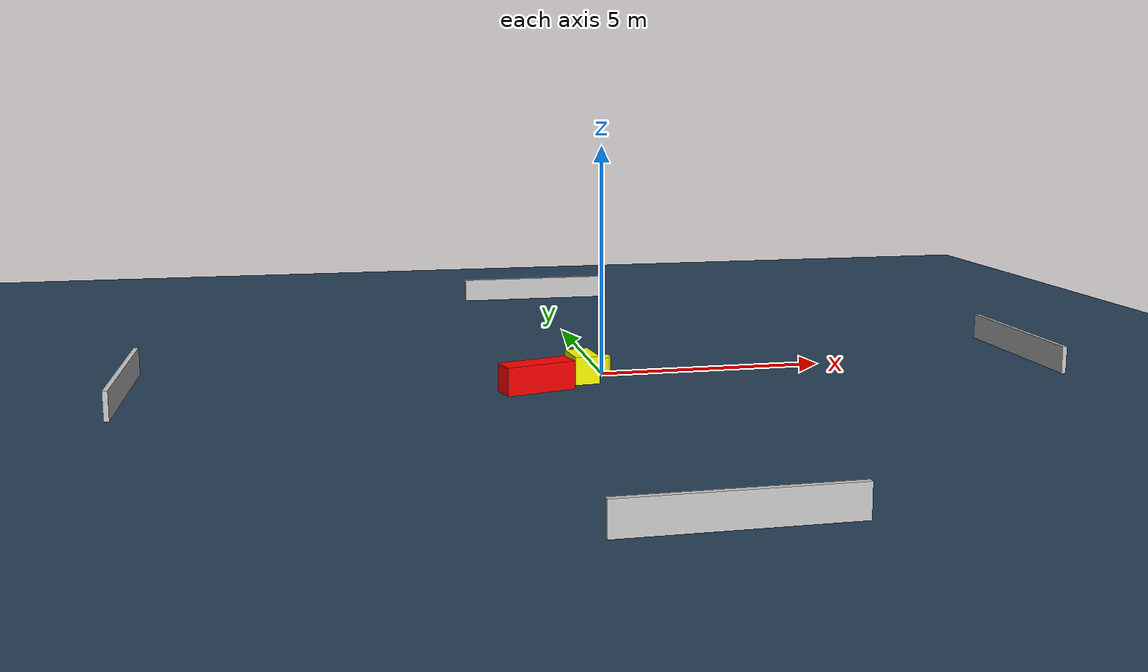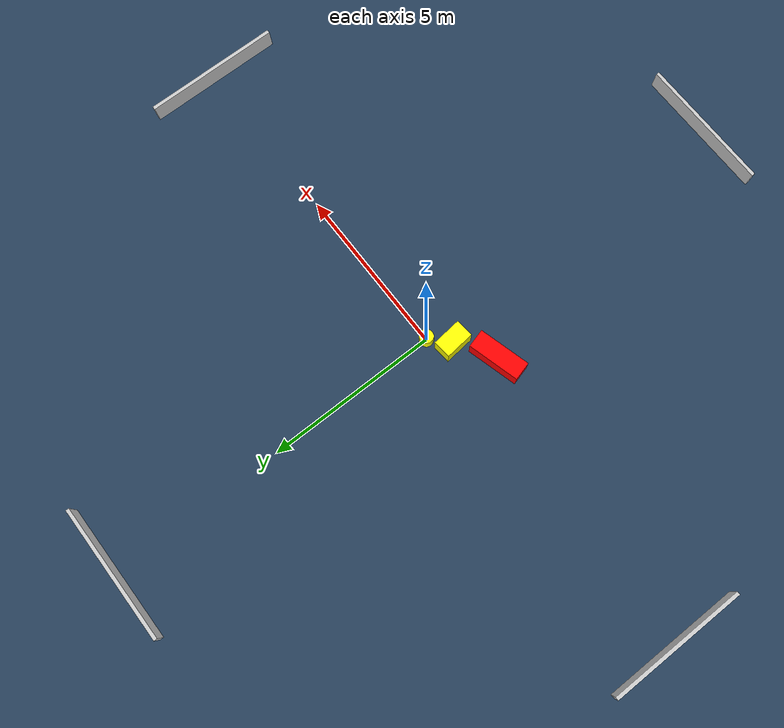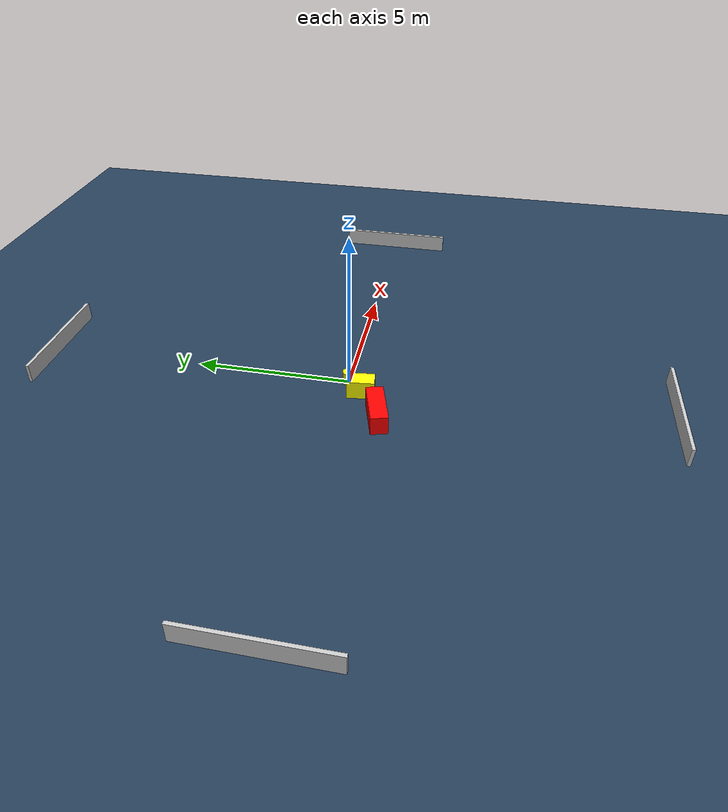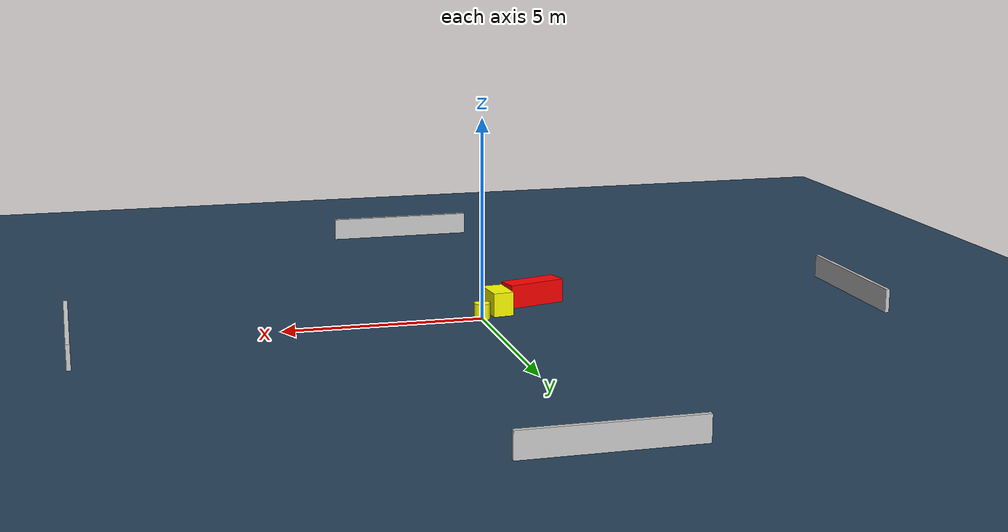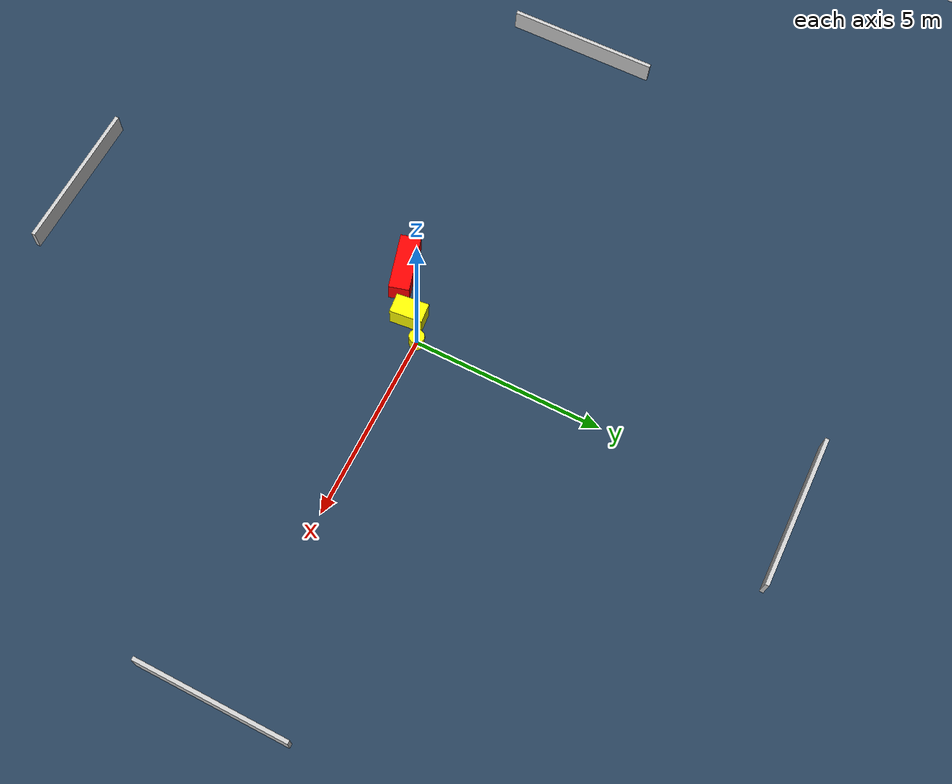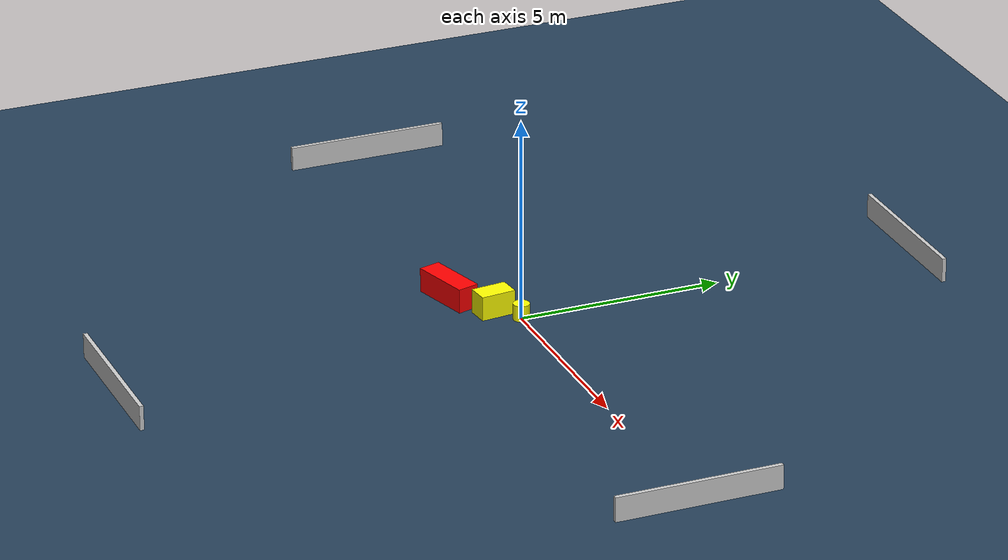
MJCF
<?xml version="1.0" ?>
<mujoco model="generated_environment">
  <option timestep="0.01" integrator="RK4" cone="elliptic"/>
  <default>
    <geom density="1"/>
  </default>
  <asset>
    <texture builtin="gradient" height="3072" name="skybox" rgb1="0.3 0.5 0.7" rgb2="0 0 0" type="skybox" width="512"/>
    <texture builtin="checker" height="300" name="groundplane" rgb1="0.2 0.3 0.4" rgb2="0.1 0.2 0.3" type="2d" width="300"/>
    <material name="groundplane" reflectance="0.2" texrepeat="5 5" texture="groundplane"/>
  </asset>
  <worldbody>
    <light dir="0 0 -1" directional="true" pos="0 0 1.5"/>
    <geom condim="3" friction="0.5 0.005 0.001" material="groundplane" name="floor" pos="0 0 0" size="0 0 0.05" type="plane"/>
    <body name="walls">
      <geom name="wall_1" condim="4" pos="-10.0 0.0 0.3" rgba="0.800000011920929 0.800000011920929 0.800000011920929 1.0" size="0.05 2.0 0.3" type="box"/>
      <geom name="wall_2" condim="4" pos="10.0 0.0 0.3" rgba="0.800000011920929 0.800000011920929 0.800000011920929 1.0" size="0.05 2.0 0.3" type="box"/>
      <geom name="wall_3" condim="4" pos="0.0 -10.0 0.3" rgba="0.800000011920929 0.800000011920929 0.800000011920929 1.0" size="2.0 0.05 0.3" type="box"/>
      <geom name="wall_4" condim="4" pos="0.0 10.0 0.3" rgba="0.800000011920929 0.800000011920929 0.800000011920929 1.0" size="2.0 0.05 0.3" type="box"/>
    </body>
    <body name="robot">
      <joint name="joint_x" type="slide" pos="0 0 0" axis="1 0 0"/>
      <joint name="joint_y" type="slide" pos="0 0 0" axis="0 1 0"/>
      <geom name="robot" type="cylinder" pos="0.0 0.0 0.2" size="0.2 0.2 0.0" mass="5.0" friction="1.0 0.005 0.0001" condim="4" rgba="1.0 1.0 0.0 1.0"/>
    </body>
    <body name="obstacle_1_movable">
      <geom name="obstacle_1_movable" condim="4" pos="-0.5333221635299367 -0.4832723121535799 0.3" euler="0 0 275.87541254664706" friction="0.0 0.005 0.001" rgba="1.0 1.0 0.0 1.0" size="0.42963587911081697 0.26235846742816576 0.3" type="box" mass="0.1"/>
      <joint type="free"/>
    </body>
    <body name="obstacle_2_static">
      <geom name="obstacle_2_static" condim="4" pos="-1.6222626895724845 -1.167646773161054 0.3" euler="0 0 105.40903922225215" friction="0.0 0.005 0.001" rgba="1.0 0.0 0.0 1.0" size="0.2696645397255856 0.7595526858433892 0.3" type="box"/>
    </body>
  </worldbody>
  <actuator>
    <motor name="actuator_x" joint="joint_x" gear="1" ctrlrange="-1 1"/>
    <motor name="actuator_y" joint="joint_y" gear="1" ctrlrange="-1 1"/>
  </actuator>
</mujoco>
